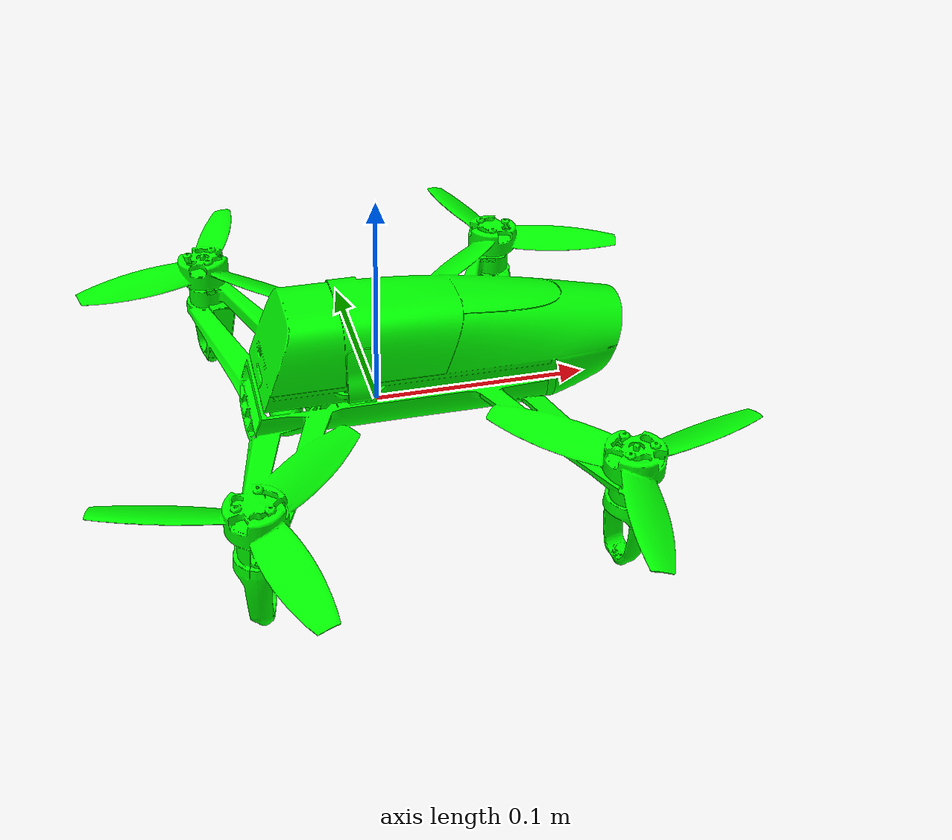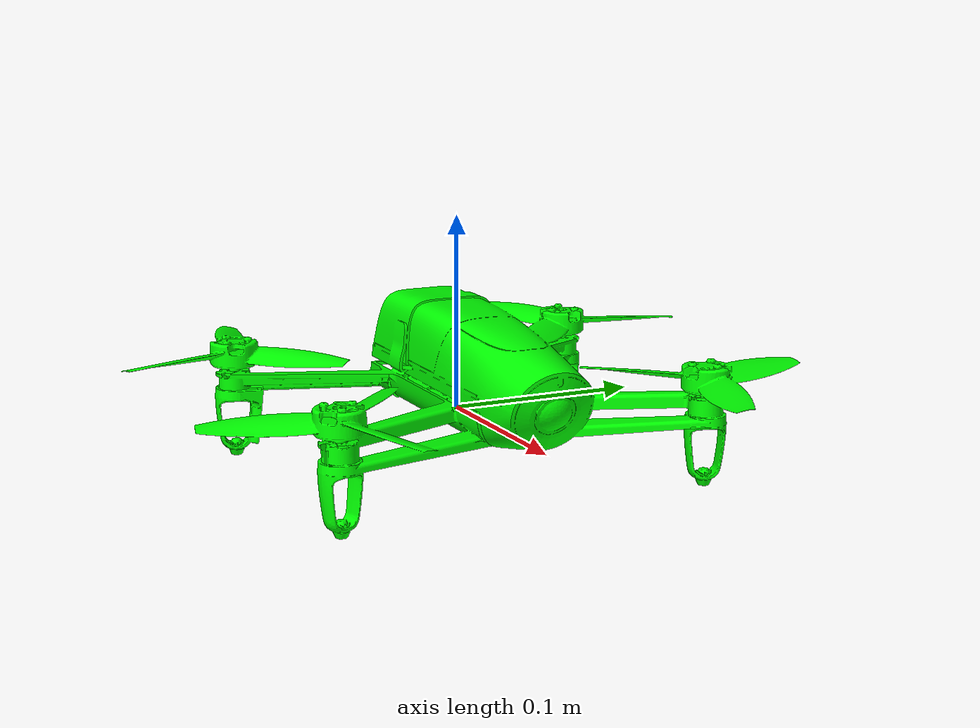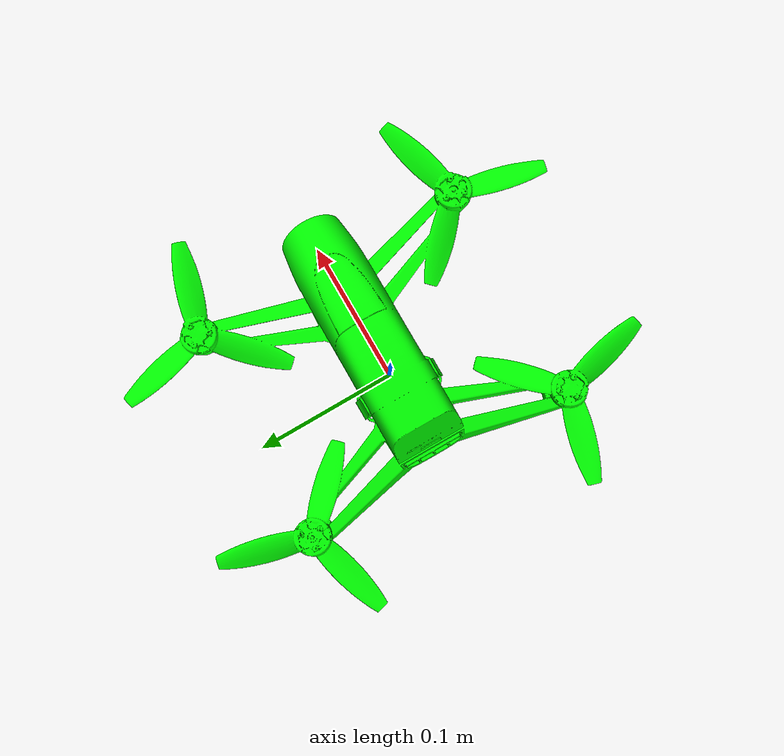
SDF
<?xml version='1.0'?>
<sdf version='1.6'>
  <model name='bebop'>
    <link name='base_link'>
      <pose frame=''>0 0 0 0 -0 0</pose>
      <inertial>
        <pose frame=''>0 0 0 0 -0 0</pose>
        <mass>0.399</mass>
        <inertia>
          <ixx>0.01152</ixx>
          <ixy>0</ixy>
          <ixz>0</ixz>
          <iyy>0.01152</iyy>
          <iyz>0</iyz>
          <izz>0.0218</izz>
        </inertia>
      </inertial>
      <self_collide>0</self_collide>
      <kinematic>0</kinematic>
      <velocity_decay/>
      <sensor name='bebop_camera_sensor' type='camera'>
        <update_rate>30</update_rate>
        <camera name='front'>
          <horizontal_fov>1.5708</horizontal_fov>
          <image>
            <width>640</width>
            <height>480</height>
            <format>R8G8B8</format>
          </image>
          <clip>
            <near>0.01</near>
            <far>100</far>
          </clip>
        </camera>
        <plugin name='bebop_camera_controller' filename='libgazebo_ros_camera.so'>
          <cameraName>/bebop/camera</cameraName>
          <alwaysOn>true</alwaysOn>
          <updateRate>30.0</updateRate>
          <imageTopicName>/bebop/image_raw</imageTopicName>
          <cameraInfoTopicName>/bebop/camera_info</cameraInfoTopicName>
          <frameName>camera_optical</frameName>
          <robotNamespace>/</robotNamespace>
        </plugin>
        <pose frame=''>0.1 0 0 0 1.309 0</pose>
      </sensor>
      <visual name='base_link_visual'>
        <pose frame=''>0 0 0 0 -0 0</pose>
        <geometry>
          <mesh>
            <scale>1 1 1</scale>
            <uri>/home/victor/bebopSim/src/bebop_simulator/bebop_gazebo/meshes/bebop_model.stl</uri>
          </mesh>
        </geometry>
        <cast_shadows>1</cast_shadows>
        <transparency>0</transparency>
        <material>
          <ambient>0 1 0 1</ambient>
          <diffuse>0 1 0 1</diffuse>
          <specular>0 1 0 1</specular>
          <emissive>0 1 0 1</emissive>
          <script>
            <name>ModelPreview_1::base_link::base_link_visual_MATERIAL_</name>
            <uri>__default__</uri>
          </script>
          <shader type='vertex'>
            <normal_map>__default__</normal_map>
          </shader>
        </material>
      </visual>
      <collision name='base_link_collision'>
        <laser_retro>0</laser_retro>
        <max_contacts>10</max_contacts>
        <pose frame=''>0 0 0 0 -0 0</pose>
        <geometry>
          <mesh>
            <uri>/home/victor/bebopSim/src/bebop_simulator/bebop_gazebo/meshes/bebop_model.stl</uri>
          </mesh>
        </geometry>
        <surface>
          <friction>
            <ode>
              <mu>1</mu>
              <mu2>1</mu2>
              <fdir1>0 0 0</fdir1>
              <slip1>0</slip1>
              <slip2>0</slip2>
            </ode>
            <torsional>
              <coefficient>1</coefficient>
              <patch_radius>0</patch_radius>
              <surface_radius>0</surface_radius>
              <use_patch_radius>1</use_patch_radius>
              <ode>
                <slip>0</slip>
              </ode>
            </torsional>
          </friction>
          <bounce>
            <restitution_coefficient>0</restitution_coefficient>
            <threshold>1e+06</threshold>
          </bounce>
          <contact>
            <collide_without_contact>0</collide_without_contact>
            <collide_without_contact_bitmask>1</collide_without_contact_bitmask>
            <collide_bitmask>1</collide_bitmask>
            <ode>
              <soft_cfm>0</soft_cfm>
              <soft_erp>0.2</soft_erp>
              <kp>1e+13</kp>
              <kd>1</kd>
              <max_vel>0.01</max_vel>
              <min_depth>0</min_depth>
            </ode>
            <bullet>
              <split_impulse>1</split_impulse>
              <split_impulse_penetration_threshold>-0.01</split_impulse_penetration_threshold>
              <soft_cfm>0</soft_cfm>
              <soft_erp>0.2</soft_erp>
              <kp>1e+13</kp>
              <kd>1</kd>
            </bullet>
          </contact>
        </surface>
      </collision>
    </link>
    <static>0</static>
    <allow_auto_disable>1</allow_auto_disable>
    <plugin name='bebop_aerodynamics' filename='libhector_gazebo_quadrotor_aerodynamics.so'>
      <alwaysOn>true</alwaysOn>
      <updateRate>0.0</updateRate>
      <bodyName>base_link</bodyName>
      <frameId>base_link</frameId>
      <robotNamespace>/</robotNamespace>
    </plugin>
    <plugin name='bebop_controller' filename='libgazebo_ros_control.so'>
      <controlPeriod>0.01</controlPeriod>
      <robotSimType>hector_quadrotor_controller_gazebo/QuadrotorHardwareSim</robotSimType>
      <robotNamespace>/</robotNamespace>
    </plugin>
    <plugin name='bebop_gps_sim' filename='libhector_gazebo_ros_gps.so'>
      <updateRate>4.0</updateRate>
      <bodyName>base_link</bodyName>
      <frameId>base_link</frameId>
      <topicName>/bebop/fix</topicName>
      <velocityTopicName>/bebop/fix_velocity</velocityTopicName>
      <referenceLatitude>37.9707</referenceLatitude>
      <referenceLongitude>23.7294</referenceLongitude>
      <drift>5.0 5.0 5.0</drift>
      <gaussianNoise>0.01 0.01 0.01</gaussianNoise>
      <velocityDrift>0 0 0</velocityDrift>
      <velocityGaussianNoise>0.05 0.05 0.05</velocityGaussianNoise>
      <robotNamespace>/</robotNamespace>
    </plugin>
    <plugin name='bebop_groundtruth_sim' filename='libgazebo_ros_p3d.so'>
      <updateRate>100.0</updateRate>
      <bodyName>base_link</bodyName>
      <topicName>/bebop/odom</topicName>
      <gaussianNoise>0.0</gaussianNoise>
      <frameName>world</frameName>
      <robotNamespace>/</robotNamespace>
    </plugin>
    <plugin name='bebop_propulsion' filename='libhector_gazebo_quadrotor_propulsion.so'>
      <alwaysOn>true</alwaysOn>
      <updateRate>0.0</updateRate>
      <bodyName>base_link</bodyName>
      <frameId>base_link</frameId>
      <controlRate>100.0</controlRate>
      <controlTolerance>0.01</controlTolerance>
      <controlDelay>0.01</controlDelay>
      <motorStatusRate>0.0</motorStatusRate>
      <triggerTopic/>
      <topicName/>
      <pwmTopicName/>
      <supplyTopic/>
      <wrenchTopic/>
      <statusTopic/>
      <robotNamespace>/</robotNamespace>
    </plugin>
  </model>
</sdf>
